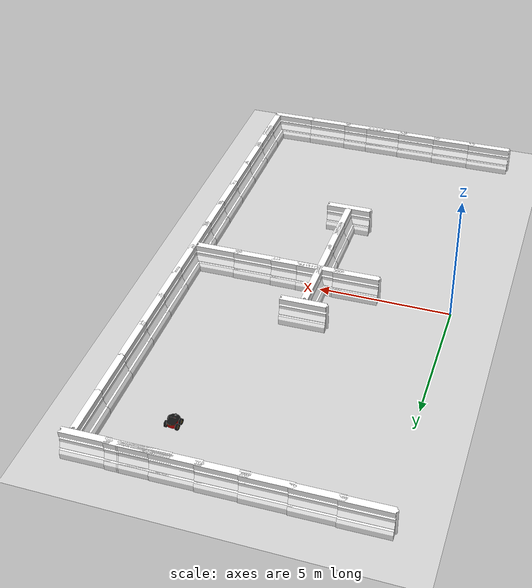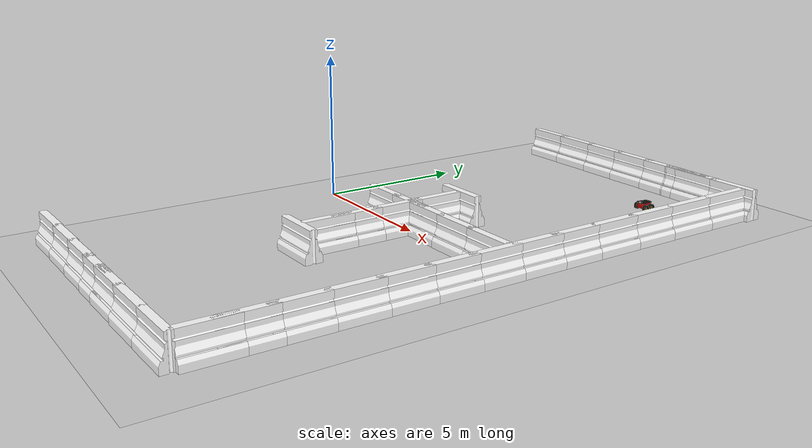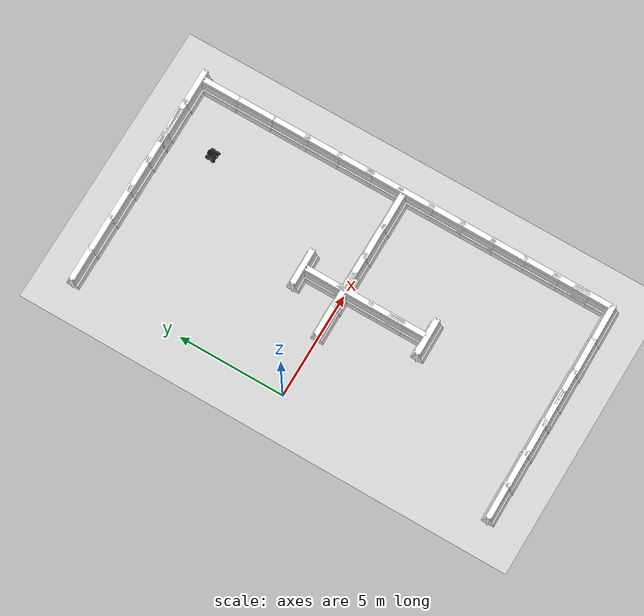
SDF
<sdf version="1.5">
 <world name="my_world">
  <model name="ground_plane">
   <static>1</static>
   <link name="link">
    <collision name="collision">
     <geometry><plane><normal>0 0 1</normal><size>100 100</size></plane></geometry>
     <surface><friction><ode><mu>100</mu><mu2>50</mu2></ode></friction></surface>
    </collision>
    <visual name="visual">
     <cast_shadows>0</cast_shadows>
     <geometry><plane><normal>0 0 1</normal><size>100 100</size></plane></geometry>
     <material>
      <script><uri>file://media/materials/scripts/gazebo.material</uri><name>Gazebo/Grey</name></script>
     </material>
    </visual>
    <velocity_decay><linear>0</linear><angular>0</angular></velocity_decay>
   </link>
  </model>
  <model name="Pioneer3AT">
   <pose>7.5293 7.95669 0.170003 8e-06 7e-06 -1.63681</pose>
   <static>0</static>
   <link name="chassis">
    <inertial>
     <mass>14</mass>
     <inertia><ixx>0.3338</ixx><ixy>0</ixy><ixz>0</ixz><iyy>0.4783</iyy><iyz>0</iyz><izz>0.3338</izz></inertia>
    </inertial>
    <collision name="collision"><geometry><box><size>0.501 0.4 0.19</size></box></geometry></collision>
    <visual name="visual">
     <geometry><mesh><uri>model://pioneer3at/meshes/chassis.dae</uri></mesh></geometry>
    </visual>
    <velocity_decay><linear>0</linear><angular>0</angular></velocity_decay>
   </link>
   <link name="right_front_wheel">
    <pose>0.125 -0.201 -0.06 1.5707 -0 0</pose>
    <collision name="collision">
     <geometry><cylinder><radius>0.11</radius><length>0.075</length></cylinder></geometry>
     <surface><friction><ode><mu>1</mu><mu2>1</mu2><slip1>0.5</slip1><slip2>0</slip2></ode></friction></surface>
    </collision>
    <visual name="visual">
     <geometry><mesh><uri>model://pioneer3at/meshes/wheel.dae</uri></mesh></geometry>
    </visual>
    <velocity_decay><linear>0</linear><angular>0</angular></velocity_decay>
    <inertial>
     <inertia><ixx>1</ixx><ixy>0</ixy><ixz>0</ixz><iyy>1</iyy><iyz>0</iyz><izz>1</izz></inertia>
     <mass>1</mass>
    </inertial>
   </link>
   <link name="left_front_wheel">
    <pose>0.125 0.201 -0.06 1.5707 -0 0</pose>
    <collision name="collision">
     <geometry><cylinder><radius>0.11</radius><length>0.075</length></cylinder></geometry>
     <surface><friction><ode><mu>1</mu><mu2>1</mu2><slip1>0.5</slip1><slip2>0</slip2></ode></friction></surface>
    </collision>
    <visual name="visual">
     <geometry><mesh><uri>model://pioneer3at/meshes/wheel.dae</uri></mesh></geometry>
    </visual>
    <velocity_decay><linear>0</linear><angular>0</angular></velocity_decay>
    <inertial>
     <inertia><ixx>1</ixx><ixy>0</ixy><ixz>0</ixz><iyy>1</iyy><iyz>0</iyz><izz>1</izz></inertia>
     <mass>1</mass>
    </inertial>
   </link>
   <link name="right_rear_wheel">
    <pose>-0.125 -0.201 -0.06 1.5707 -0 0</pose>
    <collision name="collision">
     <geometry><cylinder><radius>0.11</radius><length>0.075</length></cylinder></geometry>
     <surface><friction><ode><mu>1</mu><mu2>1</mu2><slip1>0.5</slip1><slip2>0</slip2></ode></friction></surface>
    </collision>
    <visual name="visual">
     <geometry><mesh><uri>model://pioneer3at/meshes/wheel.dae</uri></mesh></geometry>
    </visual>
    <velocity_decay><linear>0</linear><angular>0</angular></velocity_decay>
    <inertial>
     <inertia><ixx>1</ixx><ixy>0</ixy><ixz>0</ixz><iyy>1</iyy><iyz>0</iyz><izz>1</izz></inertia>
     <mass>1</mass>
    </inertial>
   </link>
   <link name="left_rear_wheel">
    <pose>-0.125 0.201 -0.06 1.5707 -0 0</pose>
    <collision name="collision">
     <geometry><cylinder><radius>0.11</radius><length>0.075</length></cylinder></geometry>
     <surface><friction><ode><mu>1</mu><mu2>1</mu2><slip1>0.5</slip1><slip2>0</slip2></ode></friction></surface>
    </collision>
    <visual name="visual">
     <geometry><mesh><uri>model://pioneer3at/meshes/wheel.dae</uri></mesh></geometry>
    </visual>
    <velocity_decay><linear>0</linear><angular>0</angular></velocity_decay>
    <inertial>
     <inertia><ixx>1</ixx><ixy>0</ixy><ixz>0</ixz><iyy>1</iyy><iyz>0</iyz><izz>1</izz></inertia>
     <mass>1</mass>
    </inertial>
   </link>
   <joint name="right_front" type="revolute">
    <child>right_front_wheel</child>
    <parent>chassis</parent>
    <axis>
     <xyz>0 1 0</xyz>
     <limit><lower>-1e+16</lower><upper>1e+16</upper></limit>
     <use_parent_model_frame>1</use_parent_model_frame>
     <dynamics><spring_reference>0</spring_reference><spring_stiffness>0</spring_stiffness></dynamics>
    </axis>
   </joint>
   <joint name="right_rear" type="revolute">
    <child>right_rear_wheel</child>
    <parent>chassis</parent>
    <axis>
     <xyz>0 1 0</xyz>
     <limit><lower>-1e+16</lower><upper>1e+16</upper></limit>
     <use_parent_model_frame>1</use_parent_model_frame>
     <dynamics><spring_reference>0</spring_reference><spring_stiffness>0</spring_stiffness></dynamics>
    </axis>
   </joint>
   <joint name="left_front" type="revolute">
    <child>left_front_wheel</child>
    <parent>chassis</parent>
    <axis>
     <xyz>0 1 0</xyz>
     <limit><lower>-1e+16</lower><upper>1e+16</upper></limit>
     <use_parent_model_frame>1</use_parent_model_frame>
     <dynamics><spring_reference>0</spring_reference><spring_stiffness>0</spring_stiffness></dynamics>
    </axis>
   </joint>
   <joint name="left_rear" type="revolute">
    <child>left_rear_wheel</child>
    <parent>chassis</parent>
    <axis>
     <xyz>0 1 0</xyz>
     <limit><lower>-1e+16</lower><upper>1e+16</upper></limit>
     <use_parent_model_frame>1</use_parent_model_frame>
     <dynamics><spring_reference>0</spring_reference><spring_stiffness>0</spring_stiffness></dynamics>
    </axis>
   </joint>
   <link name="hokuyo::link">
    <inertial>
     <mass>0.1</mass>
     <inertia><ixx>1</ixx><ixy>0</ixy><ixz>0</ixz><iyy>1</iyy><iyz>0</iyz><izz>1</izz></inertia>
    </inertial>
    <visual name="visual"><geometry><mesh><uri>model://hokuyo/meshes/hokuyo.dae</uri></mesh></geometry></visual>
    <collision name="collision-base">
     <pose>0 0 -0.0145 0 -0 0</pose>
     <geometry><box><size>0.05 0.05 0.041</size></box></geometry>
    </collision>
    <collision name="collision-top">
     <pose>0 0 0.0205 0 -0 0</pose>
     <geometry><cylinder><radius>0.021</radius><length>0.029</length></cylinder></geometry>
    </collision>
    <sensor name="laser" type="ray">
     <pose>0.01 0 0.0175 0 -0 0</pose>
     <ray>
      <scan>
       <horizontal>
        <samples>640</samples>
        <resolution>1</resolution>
        <min_angle>-2.26889</min_angle>
        <max_angle>2.2689</max_angle>
       </horizontal>
      </scan>
      <range><min>0.08</min><max>10</max><resolution>0.01</resolution></range>
     </ray>
     <plugin name="laser" filename="libRayPlugin.so"/>
     <always_on>1</always_on>
     <update_rate>30</update_rate>
     <visualize>1</visualize>
    </sensor>
    <velocity_decay><linear>0</linear><angular>0</angular></velocity_decay>
    <pose>0.2 0 0.13 0 -0 0</pose>
   </link>
   <joint name="hokuyo_joint" type="revolute">
    <child>hokuyo::link</child>
    <parent>chassis</parent>
    <axis>
     <xyz>0 0 1</xyz>
     <limit><upper>0</upper><lower>0</lower></limit>
     <use_parent_model_frame>1</use_parent_model_frame>
     <dynamics><spring_reference>0</spring_reference><spring_stiffness>0</spring_stiffness></dynamics>
    </axis>
   </joint>
   <plugin name="SkidSteerDrivePlugin" filename="libSkidSteerDrivePlugin.so"/>
  </model>
  <model name="drc_practice_white_jersey_barrier">
   <static>1</static>
   <link name="link">
    <visual name="visual">
     <geometry>
      <mesh><uri>model://drc_practice_white_jersey_barrier/meshes/jersey_barrier.dae</uri></mesh>
     </geometry>
    </visual>
    <collision name="collision">
     <geometry>
      <mesh><uri>model://drc_practice_white_jersey_barrier/meshes/jersey_barrier.dae</uri></mesh>
     </geometry>
    </collision>
   </link>
   <pose>10 9 0 0 -0 0</pose>
  </model>
  <model name="drc_practice_white_jersey_barrier_clone">
   <static>1</static>
   <link name="link">
    <visual name="visual">
     <geometry>
      <mesh><uri>model://drc_practice_white_jersey_barrier/meshes/jersey_barrier.dae</uri></mesh>
     </geometry>
    </visual>
    <collision name="collision">
     <geometry>
      <mesh><uri>model://drc_practice_white_jersey_barrier/meshes/jersey_barrier.dae</uri></mesh>
     </geometry>
    </collision>
   </link>
   <pose>10 7.282 0 0 -0 0</pose>
  </model>
  <model name="drc_practice_white_jersey_barrier_clone_0">
   <static>1</static>
   <link name="link">
    <visual name="visual">
     <geometry>
      <mesh><uri>model://drc_practice_white_jersey_barrier/meshes/jersey_barrier.dae</uri></mesh>
     </geometry>
    </visual>
    <collision name="collision">
     <geometry>
      <mesh><uri>model://drc_practice_white_jersey_barrier/meshes/jersey_barrier.dae</uri></mesh>
     </geometry>
    </collision>
   </link>
   <pose>10 5.53666 0 0 -0 0</pose>
  </model>
  <model name="drc_practice_white_jersey_barrier_clone_1">
   <static>1</static>
   <link name="link">
    <visual name="visual">
     <geometry>
      <mesh><uri>model://drc_practice_white_jersey_barrier/meshes/jersey_barrier.dae</uri></mesh>
     </geometry>
    </visual>
    <collision name="collision">
     <geometry>
      <mesh><uri>model://drc_practice_white_jersey_barrier/meshes/jersey_barrier.dae</uri></mesh>
     </geometry>
    </collision>
   </link>
   <pose>10 4 0 0 -0 0</pose>
  </model>
  <model name="drc_practice_white_jersey_barrier_clone_2">
   <static>1</static>
   <link name="link">
    <visual name="visual">
     <geometry>
      <mesh><uri>model://drc_practice_white_jersey_barrier/meshes/jersey_barrier.dae</uri></mesh>
     </geometry>
    </visual>
    <collision name="collision">
     <geometry>
      <mesh><uri>model://drc_practice_white_jersey_barrier/meshes/jersey_barrier.dae</uri></mesh>
     </geometry>
    </collision>
   </link>
   <pose>10 2.4065 0 0 -0 0</pose>
  </model>
  <model name="drc_practice_white_jersey_barrier_clone_3">
   <static>1</static>
   <link name="link">
    <visual name="visual">
     <geometry>
      <mesh><uri>model://drc_practice_white_jersey_barrier/meshes/jersey_barrier.dae</uri></mesh>
     </geometry>
    </visual>
    <collision name="collision">
     <geometry>
      <mesh><uri>model://drc_practice_white_jersey_barrier/meshes/jersey_barrier.dae</uri></mesh>
     </geometry>
    </collision>
   </link>
   <pose>10 1 0 0 -0 0</pose>
  </model>
  <model name="drc_practice_white_jersey_barrier_clone_4">
   <static>1</static>
   <link name="link">
    <visual name="visual">
     <geometry>
      <mesh><uri>model://drc_practice_white_jersey_barrier/meshes/jersey_barrier.dae</uri></mesh>
     </geometry>
    </visual>
    <collision name="collision">
     <geometry>
      <mesh><uri>model://drc_practice_white_jersey_barrier/meshes/jersey_barrier.dae</uri></mesh>
     </geometry>
    </collision>
   </link>
   <pose>10 -0.535264 0 0 -0 0</pose>
  </model>
  <model name="drc_practice_white_jersey_barrier_clone_5">
   <static>1</static>
   <link name="link">
    <visual name="visual">
     <geometry>
      <mesh><uri>model://drc_practice_white_jersey_barrier/meshes/jersey_barrier.dae</uri></mesh>
     </geometry>
    </visual>
    <collision name="collision">
     <geometry>
      <mesh><uri>model://drc_practice_white_jersey_barrier/meshes/jersey_barrier.dae</uri></mesh>
     </geometry>
    </collision>
   </link>
   <pose>10 -2 0 0 -0 0</pose>
  </model>
  <model name="drc_practice_white_jersey_barrier_clone_6">
   <static>1</static>
   <link name="link">
    <visual name="visual">
     <geometry>
      <mesh><uri>model://drc_practice_white_jersey_barrier/meshes/jersey_barrier.dae</uri></mesh>
     </geometry>
    </visual>
    <collision name="collision">
     <geometry>
      <mesh><uri>model://drc_practice_white_jersey_barrier/meshes/jersey_barrier.dae</uri></mesh>
     </geometry>
    </collision>
   </link>
   <pose>10 -3.49765 0 0 -0 0</pose>
  </model>
  <model name="drc_practice_white_jersey_barrier_clone_7">
   <static>1</static>
   <link name="link">
    <visual name="visual">
     <geometry>
      <mesh><uri>model://drc_practice_white_jersey_barrier/meshes/jersey_barrier.dae</uri></mesh>
     </geometry>
    </visual>
    <collision name="collision">
     <geometry>
      <mesh><uri>model://drc_practice_white_jersey_barrier/meshes/jersey_barrier.dae</uri></mesh>
     </geometry>
    </collision>
   </link>
   <pose>10 -5 0 0 -0 0</pose>
  </model>
  <model name="drc_practice_white_jersey_barrier_clone_8">
   <static>1</static>
   <link name="link">
    <visual name="visual">
     <geometry>
      <mesh><uri>model://drc_practice_white_jersey_barrier/meshes/jersey_barrier.dae</uri></mesh>
     </geometry>
    </visual>
    <collision name="collision">
     <geometry>
      <mesh><uri>model://drc_practice_white_jersey_barrier/meshes/jersey_barrier.dae</uri></mesh>
     </geometry>
    </collision>
   </link>
   <pose>10 -6.58238 0 0 -0 0</pose>
  </model>
  <model name="drc_practice_white_jersey_barrier_clone_9">
   <static>1</static>
   <link name="link">
    <visual name="visual">
     <geometry>
      <mesh><uri>model://drc_practice_white_jersey_barrier/meshes/jersey_barrier.dae</uri></mesh>
     </geometry>
    </visual>
    <collision name="collision">
     <geometry>
      <mesh><uri>model://drc_practice_white_jersey_barrier/meshes/jersey_barrier.dae</uri></mesh>
     </geometry>
    </collision>
   </link>
   <pose>10 -8 0 0 -0 0</pose>
  </model>
  <model name="drc_practice_white_jersey_barrier_clone_10">
   <static>1</static>
   <link name="link">
    <visual name="visual">
     <geometry>
      <mesh><uri>model://drc_practice_white_jersey_barrier/meshes/jersey_barrier.dae</uri></mesh>
     </geometry>
    </visual>
    <collision name="collision">
     <geometry>
      <mesh><uri>model://drc_practice_white_jersey_barrier/meshes/jersey_barrier.dae</uri></mesh>
     </geometry>
    </collision>
   </link>
   <pose>10 -9 0 0 -0 0</pose>
  </model>
  <model name="drc_practice_white_jersey_barrier_clone_11">
   <static>1</static>
   <link name="link">
    <visual name="visual">
     <geometry>
      <mesh><uri>model://drc_practice_white_jersey_barrier/meshes/jersey_barrier.dae</uri></mesh>
     </geometry>
    </visual>
    <collision name="collision">
     <geometry>
      <mesh><uri>model://drc_practice_white_jersey_barrier/meshes/jersey_barrier.dae</uri></mesh>
     </geometry>
    </collision>
   </link>
   <pose>9.25999 -9.98356 0 0 0 -1.54936</pose>
  </model>
  <model name="drc_practice_white_jersey_barrier_clone_11_clone">
   <static>1</static>
   <link name="link">
    <visual name="visual">
     <geometry>
      <mesh><uri>model://drc_practice_white_jersey_barrier/meshes/jersey_barrier.dae</uri></mesh>
     </geometry>
    </visual>
    <collision name="collision">
     <geometry>
      <mesh><uri>model://drc_practice_white_jersey_barrier/meshes/jersey_barrier.dae</uri></mesh>
     </geometry>
    </collision>
   </link>
   <pose>7.5775 -10 0 0 0 -1.54936</pose>
  </model>
  <model name="drc_practice_white_jersey_barrier_clone_11_clone_0">
   <static>1</static>
   <link name="link">
    <visual name="visual">
     <geometry>
      <mesh><uri>model://drc_practice_white_jersey_barrier/meshes/jersey_barrier.dae</uri></mesh>
     </geometry>
    </visual>
    <collision name="collision">
     <geometry>
      <mesh><uri>model://drc_practice_white_jersey_barrier/meshes/jersey_barrier.dae</uri></mesh>
     </geometry>
    </collision>
   </link>
   <pose>6 -10 0 0 0 -1.54936</pose>
  </model>
  <model name="drc_practice_white_jersey_barrier_clone_11_clone_1">
   <static>1</static>
   <link name="link">
    <visual name="visual">
     <geometry>
      <mesh><uri>model://drc_practice_white_jersey_barrier/meshes/jersey_barrier.dae</uri></mesh>
     </geometry>
    </visual>
    <collision name="collision">
     <geometry>
      <mesh><uri>model://drc_practice_white_jersey_barrier/meshes/jersey_barrier.dae</uri></mesh>
     </geometry>
    </collision>
   </link>
   <pose>5 -10 0 0 0 -1.54936</pose>
  </model>
  <model name="drc_practice_white_jersey_barrier_clone_11_clone_2">
   <static>1</static>
   <link name="link">
    <visual name="visual">
     <geometry>
      <mesh><uri>model://drc_practice_white_jersey_barrier/meshes/jersey_barrier.dae</uri></mesh>
     </geometry>
    </visual>
    <collision name="collision">
     <geometry>
      <mesh><uri>model://drc_practice_white_jersey_barrier/meshes/jersey_barrier.dae</uri></mesh>
     </geometry>
    </collision>
   </link>
   <pose>3.55368 -10 0 0 0 -1.54936</pose>
  </model>
  <model name="drc_practice_white_jersey_barrier_clone_11_clone_3">
   <static>1</static>
   <link name="link">
    <visual name="visual">
     <geometry>
      <mesh><uri>model://drc_practice_white_jersey_barrier/meshes/jersey_barrier.dae</uri></mesh>
     </geometry>
    </visual>
    <collision name="collision">
     <geometry>
      <mesh><uri>model://drc_practice_white_jersey_barrier/meshes/jersey_barrier.dae</uri></mesh>
     </geometry>
    </collision>
   </link>
   <pose>2 -10 0 0 0 -1.54936</pose>
  </model>
  <model name="drc_practice_white_jersey_barrier_clone_11_clone_4">
   <static>1</static>
   <link name="link">
    <visual name="visual">
     <geometry>
      <mesh><uri>model://drc_practice_white_jersey_barrier/meshes/jersey_barrier.dae</uri></mesh>
     </geometry>
    </visual>
    <collision name="collision">
     <geometry>
      <mesh><uri>model://drc_practice_white_jersey_barrier/meshes/jersey_barrier.dae</uri></mesh>
     </geometry>
    </collision>
   </link>
   <pose>0.457775 -10 0 0 0 -1.54936</pose>
  </model>
  <model name="drc_practice_white_jersey_barrier_clone_11_clone_12_clone_clone">
   <static>1</static>
   <link name="link">
    <visual name="visual">
     <geometry>
      <mesh><uri>model://drc_practice_white_jersey_barrier/meshes/jersey_barrier.dae</uri></mesh>
     </geometry>
    </visual>
    <collision name="collision">
     <geometry>
      <mesh><uri>model://drc_practice_white_jersey_barrier/meshes/jersey_barrier.dae</uri></mesh>
     </geometry>
    </collision>
   </link>
   <pose>7.51996 10 0 0 0 -1.54936</pose>
  </model>
  <model name="drc_practice_white_jersey_barrier_clone_11_clone_12_clone_clone_0">
   <static>1</static>
   <link name="link">
    <visual name="visual">
     <geometry>
      <mesh><uri>model://drc_practice_white_jersey_barrier/meshes/jersey_barrier.dae</uri></mesh>
     </geometry>
    </visual>
    <collision name="collision">
     <geometry>
      <mesh><uri>model://drc_practice_white_jersey_barrier/meshes/jersey_barrier.dae</uri></mesh>
     </geometry>
    </collision>
   </link>
   <pose>7.57345 10 0 0 0 -1.54936</pose>
  </model>
  <model name="drc_practice_white_jersey_barrier_clone_11_clone_10_clone">
   <static>1</static>
   <link name="link">
    <visual name="visual">
     <geometry>
      <mesh><uri>model://drc_practice_white_jersey_barrier/meshes/jersey_barrier.dae</uri></mesh>
     </geometry>
    </visual>
    <collision name="collision">
     <geometry>
      <mesh><uri>model://drc_practice_white_jersey_barrier/meshes/jersey_barrier.dae</uri></mesh>
     </geometry>
    </collision>
   </link>
   <pose>9.53691 10 0 0 0 -1.54936</pose>
  </model>
  <model name="drc_practice_white_jersey_barrier_clone_11_clone_10_clone_clone">
   <static>1</static>
   <link name="link">
    <visual name="visual">
     <geometry>
      <mesh><uri>model://drc_practice_white_jersey_barrier/meshes/jersey_barrier.dae</uri></mesh>
     </geometry>
    </visual>
    <collision name="collision">
     <geometry>
      <mesh><uri>model://drc_practice_white_jersey_barrier/meshes/jersey_barrier.dae</uri></mesh>
     </geometry>
    </collision>
   </link>
   <pose>8 10 0 0 0 -1.54936</pose>
  </model>
  <model name="drc_practice_white_jersey_barrier_clone_11_clone_10_clone_clone_0">
   <static>1</static>
   <link name="link">
    <visual name="visual">
     <geometry>
      <mesh><uri>model://drc_practice_white_jersey_barrier/meshes/jersey_barrier.dae</uri></mesh>
     </geometry>
    </visual>
    <collision name="collision">
     <geometry>
      <mesh><uri>model://drc_practice_white_jersey_barrier/meshes/jersey_barrier.dae</uri></mesh>
     </geometry>
    </collision>
   </link>
   <pose>6.5002 10 0 0 0 -1.54936</pose>
  </model>
  <model name="drc_practice_white_jersey_barrier_clone_11_clone_10_clone_clone_1">
   <static>1</static>
   <link name="link">
    <visual name="visual">
     <geometry>
      <mesh><uri>model://drc_practice_white_jersey_barrier/meshes/jersey_barrier.dae</uri></mesh>
     </geometry>
    </visual>
    <collision name="collision">
     <geometry>
      <mesh><uri>model://drc_practice_white_jersey_barrier/meshes/jersey_barrier.dae</uri></mesh>
     </geometry>
    </collision>
   </link>
   <pose>5 10 0 0 0 -1.54936</pose>
  </model>
  <model name="drc_practice_white_jersey_barrier_clone_11_clone_10_clone_clone_2">
   <static>1</static>
   <link name="link">
    <visual name="visual">
     <geometry>
      <mesh><uri>model://drc_practice_white_jersey_barrier/meshes/jersey_barrier.dae</uri></mesh>
     </geometry>
    </visual>
    <collision name="collision">
     <geometry>
      <mesh><uri>model://drc_practice_white_jersey_barrier/meshes/jersey_barrier.dae</uri></mesh>
     </geometry>
    </collision>
   </link>
   <pose>3.57299 10 0 0 0 -1.54936</pose>
  </model>
  <model name="drc_practice_white_jersey_barrier_clone_11_clone_10_clone_clone_3">
   <static>1</static>
   <link name="link">
    <visual name="visual">
     <geometry>
      <mesh><uri>model://drc_practice_white_jersey_barrier/meshes/jersey_barrier.dae</uri></mesh>
     </geometry>
    </visual>
    <collision name="collision">
     <geometry>
      <mesh><uri>model://drc_practice_white_jersey_barrier/meshes/jersey_barrier.dae</uri></mesh>
     </geometry>
    </collision>
   </link>
   <pose>2 10 0 0 0 -1.54936</pose>
  </model>
  <model name="drc_practice_white_jersey_barrier_clone_11_clone_10_clone_clone_4">
   <static>1</static>
   <link name="link">
    <visual name="visual">
     <geometry>
      <mesh><uri>model://drc_practice_white_jersey_barrier/meshes/jersey_barrier.dae</uri></mesh>
     </geometry>
    </visual>
    <collision name="collision">
     <geometry>
      <mesh><uri>model://drc_practice_white_jersey_barrier/meshes/jersey_barrier.dae</uri></mesh>
     </geometry>
    </collision>
   </link>
   <pose>0.469817 10 0 0 0 -1.54936</pose>
  </model>
  <model name="drc_practice_white_jersey_barrier_clone_11_clone_10_clone_clone_12">
   <static>1</static>
   <link name="link">
    <visual name="visual">
     <geometry>
      <mesh><uri>model://drc_practice_white_jersey_barrier/meshes/jersey_barrier.dae</uri></mesh>
     </geometry>
    </visual>
    <collision name="collision">
     <geometry>
      <mesh><uri>model://drc_practice_white_jersey_barrier/meshes/jersey_barrier.dae</uri></mesh>
     </geometry>
    </collision>
   </link>
   <pose>9 0 0 0 0 -1.54936</pose>
  </model>
  <model name="drc_practice_white_jersey_barrier_clone_11_clone_10_clone_clone_13">
   <static>1</static>
   <link name="link">
    <visual name="visual">
     <geometry>
      <mesh><uri>model://drc_practice_white_jersey_barrier/meshes/jersey_barrier.dae</uri></mesh>
     </geometry>
    </visual>
    <collision name="collision">
     <geometry>
      <mesh><uri>model://drc_practice_white_jersey_barrier/meshes/jersey_barrier.dae</uri></mesh>
     </geometry>
    </collision>
   </link>
   <pose>7.48479 0 0 0 0 -1.54936</pose>
  </model>
  <model name="drc_practice_white_jersey_barrier_clone_11_clone_10_clone_clone_14">
   <static>1</static>
   <link name="link">
    <visual name="visual">
     <geometry>
      <mesh><uri>model://drc_practice_white_jersey_barrier/meshes/jersey_barrier.dae</uri></mesh>
     </geometry>
    </visual>
    <collision name="collision">
     <geometry>
      <mesh><uri>model://drc_practice_white_jersey_barrier/meshes/jersey_barrier.dae</uri></mesh>
     </geometry>
    </collision>
   </link>
   <pose>6 0 0 0 0 -1.54936</pose>
  </model>
  <model name="drc_practice_white_jersey_barrier_clone_11_clone_10_clone_clone_15">
   <static>1</static>
   <link name="link">
    <visual name="visual">
     <geometry>
      <mesh><uri>model://drc_practice_white_jersey_barrier/meshes/jersey_barrier.dae</uri></mesh>
     </geometry>
    </visual>
    <collision name="collision">
     <geometry>
      <mesh><uri>model://drc_practice_white_jersey_barrier/meshes/jersey_barrier.dae</uri></mesh>
     </geometry>
    </collision>
   </link>
   <pose>5 0 0 0 0 -1.54936</pose>
  </model>
  <model name="drc_practice_white_jersey_barrier_clone_32">
   <static>1</static>
   <link name="link">
    <visual name="visual">
     <geometry>
      <mesh><uri>model://drc_practice_white_jersey_barrier/meshes/jersey_barrier.dae</uri></mesh>
     </geometry>
    </visual>
    <collision name="collision">
     <geometry>
      <mesh><uri>model://drc_practice_white_jersey_barrier/meshes/jersey_barrier.dae</uri></mesh>
     </geometry>
    </collision>
   </link>
   <pose>5 1 0 0 -0 0</pose>
  </model>
  <model name="drc_practice_white_jersey_barrier_clone_13_clone_5">
   <static>1</static>
   <link name="link">
    <visual name="visual">
     <geometry>
      <mesh><uri>model://drc_practice_white_jersey_barrier/meshes/jersey_barrier.dae</uri></mesh>
     </geometry>
    </visual>
    <collision name="collision">
     <geometry>
      <mesh><uri>model://drc_practice_white_jersey_barrier/meshes/jersey_barrier.dae</uri></mesh>
     </geometry>
    </collision>
   </link>
   <pose>5 -0.505575 0 0 -0 0</pose>
  </model>
  <model name="drc_practice_white_jersey_barrier_clone_13_clone_6">
   <static>1</static>
   <link name="link">
    <visual name="visual">
     <geometry>
      <mesh><uri>model://drc_practice_white_jersey_barrier/meshes/jersey_barrier.dae</uri></mesh>
     </geometry>
    </visual>
    <collision name="collision">
     <geometry>
      <mesh><uri>model://drc_practice_white_jersey_barrier/meshes/jersey_barrier.dae</uri></mesh>
     </geometry>
    </collision>
   </link>
   <pose>5 -2 0 0 -0 0</pose>
  </model>
  <model name="drc_practice_white_jersey_barrier_clone_13_clone_7">
   <static>1</static>
   <link name="link">
    <visual name="visual">
     <geometry>
      <mesh><uri>model://drc_practice_white_jersey_barrier/meshes/jersey_barrier.dae</uri></mesh>
     </geometry>
    </visual>
    <collision name="collision">
     <geometry>
      <mesh><uri>model://drc_practice_white_jersey_barrier/meshes/jersey_barrier.dae</uri></mesh>
     </geometry>
    </collision>
   </link>
   <pose>5 -3 0 0 -0 0</pose>
  </model>
  <model name="drc_practice_white_jersey_barrier_clone_11_clone_10_clone_clone_12_clone_10">
   <static>1</static>
   <link name="link">
    <visual name="visual">
     <geometry>
      <mesh><uri>model://drc_practice_white_jersey_barrier/meshes/jersey_barrier.dae</uri></mesh>
     </geometry>
    </visual>
    <collision name="collision">
     <geometry>
      <mesh><uri>model://drc_practice_white_jersey_barrier/meshes/jersey_barrier.dae</uri></mesh>
     </geometry>
    </collision>
   </link>
   <pose>3.59521 0 0 0 0 -1.54936</pose>
  </model>
  <model name="drc_practice_white_jersey_barrier_clone_11_clone_10_clone_clone_12_clone_12">
   <static>1</static>
   <link name="link">
    <visual name="visual">
     <geometry>
      <mesh><uri>model://drc_practice_white_jersey_barrier/meshes/jersey_barrier.dae</uri></mesh>
     </geometry>
    </visual>
    <collision name="collision">
     <geometry>
      <mesh><uri>model://drc_practice_white_jersey_barrier/meshes/jersey_barrier.dae</uri></mesh>
     </geometry>
    </collision>
   </link>
   <pose>5 -4 0 0 0 -1.54936</pose>
  </model>
  <model name="drc_practice_white_jersey_barrier_clone_11_clone_10_clone_clone_12_clone_13">
   <static>1</static>
   <link name="link">
    <visual name="visual">
     <geometry>
      <mesh><uri>model://drc_practice_white_jersey_barrier/meshes/jersey_barrier.dae</uri></mesh>
     </geometry>
    </visual>
    <collision name="collision">
     <geometry>
      <mesh><uri>model://drc_practice_white_jersey_barrier/meshes/jersey_barrier.dae</uri></mesh>
     </geometry>
    </collision>
   </link>
   <pose>5 2 0 0 0 -1.54936</pose>
  </model>
 </world>
</sdf>
